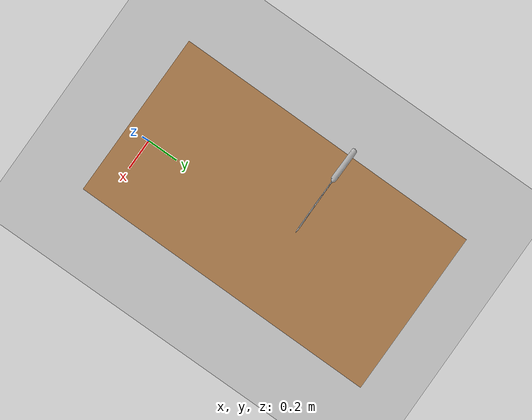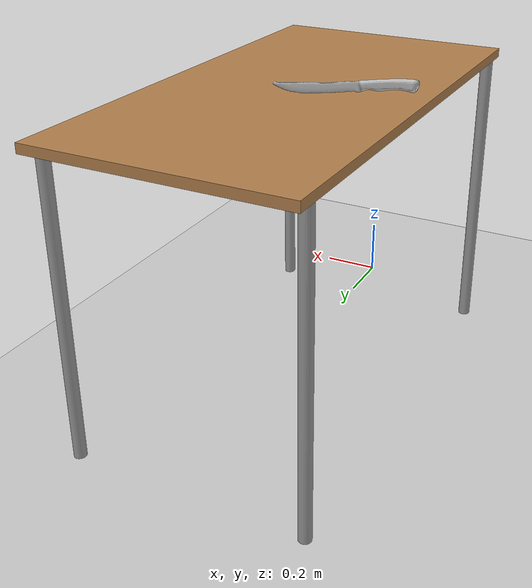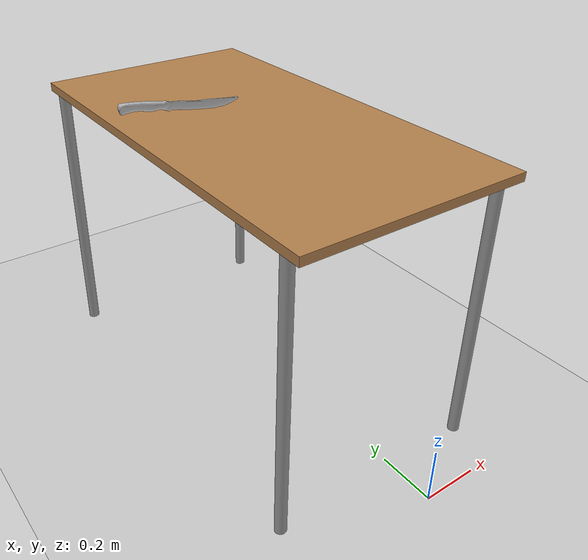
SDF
<sdf version="1.4">
 <world name="default">
  <physics type="ode">
   <max_step_size>0.001</max_step_size>
   <real_time_factor>1</real_time_factor>
   <real_time_update_rate>1000</real_time_update_rate>
   <gravity>0 0 -9.8</gravity>
  </physics>
  <include><uri>model://sun</uri></include>
  <include><uri>model://ground_plane</uri></include>
  <include><uri>model://table</uri><pose>-0.071633 0.854817 0 0 0 -1.57694</pose></include>
  <include>
   <uri>model://knife</uri>
   <pose>-0.305 0.974 1.082 -1.57746 0.148233 -0.000983</pose>
   <plugin name="swing" filename="libSwingPlugin.so"/>
  </include>
  <plugin name="butter" filename="libButterFactoryPlugin.so">
   <pose>-0.128 1.059 1.036 0 0 0</pose>
   <size>3 2 3 0.005</size>
  </plugin>
 </world>
</sdf>

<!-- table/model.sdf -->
<sdf version="1.5">
  <model name="table">
    <static>true</static>
    <link name="link">
      <collision name="surface">
        <pose>0 0 1.0 0 0 0</pose>
        <geometry>
          <box>
            <size>1.5 0.8 0.03</size>
          </box>
        </geometry>
        <surface>
          <friction>
            <ode>
              <mu>0.6</mu>
              <mu2>0.6</mu2>
            </ode>
          </friction>
        </surface>
      </collision>
      <visual name="visual1">
        <pose>0 0 1.0 0 0 0</pose>
        <geometry>
          <box>
            <size>1.5 0.8 0.03</size>
          </box>
        </geometry>
        <material>
          <script>
            <uri>model://media/materials/scripts/gazebo.material</uri>
            <name>Gazebo/Wood</name>
          </script>
        </material>
      </visual>
      <collision name="front_left_leg">
        <pose>0.68 0.38 0.5 0 0 0</pose>
        <geometry>
          <cylinder>
            <radius>0.02</radius>
            <length>1.0</length>
          </cylinder>
        </geometry>
      </collision>
      <visual name="front_left_leg">
        <pose>0.68 0.38 0.5 0 0 0</pose>
        <geometry>
          <cylinder>
            <radius>0.02</radius>
            <length>1.0</length>
          </cylinder>
        </geometry>
        <material>
          <script>
            <uri>model://media/materials/scripts/gazebo.material</uri>
            <name>Gazebo/Grey</name>
          </script>
        </material>
      </visual>
      <collision name="front_right_leg">
        <pose>0.68 -0.38 0.5 0 0 0</pose>
        <geometry>
          <cylinder>
            <radius>0.02</radius>
            <length>1.0</length>
          </cylinder>
        </geometry>
      </collision>
      <visual name="front_right_leg">
        <pose>0.68 -0.38 0.5 0 0 0</pose>
        <geometry>
          <cylinder>
            <radius>0.02</radius>
            <length>1.0</length>
          </cylinder>
        </geometry>
        <material>
          <script>
            <uri>model://media/materials/scripts/gazebo.material</uri>
            <name>Gazebo/Grey</name>
          </script>
        </material>
      </visual>
      <collision name="back_right_leg">
        <pose>-0.68 -0.38 0.5 0 0 0</pose>
        <geometry>
          <cylinder>
            <radius>0.02</radius>
            <length>1.0</length>
          </cylinder>
        </geometry>
      </collision>
      <visual name="back_right_leg">
        <pose>-0.68 -0.38 0.5 0 0 0</pose>
        <geometry>
          <cylinder>
            <radius>0.02</radius>
            <length>1.0</length>
          </cylinder>
        </geometry>
        <material>
          <script>
            <uri>model://media/materials/scripts/gazebo.material</uri>
            <name>Gazebo/Grey</name>
          </script>
        </material>
      </visual>
      <collision name="back_left_leg">
        <pose>-0.68 0.38 0.5 0 0 0</pose>
        <geometry>
          <cylinder>
            <radius>0.02</radius>
            <length>1.0</length>
          </cylinder>
        </geometry>
      </collision>
      <visual name="back_left_leg">
        <pose>-0.68 0.38 0.5 0 0 0</pose>
        <geometry>
          <cylinder>
            <radius>0.02</radius>
            <length>1.0</length>
          </cylinder>
        </geometry>
        <material>
          <script>
            <uri>model://media/materials/scripts/gazebo.material</uri>
            <name>Gazebo/Grey</name>
          </script>
        </material>
      </visual>
    </link>
  </model>
</sdf>

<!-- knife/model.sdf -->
<sdf version='1.6'>
    <model name='knife'>
        <static>false</static>
        <pose>0 0 0 0 0 0</pose>
        <link name='link'>

            <sensor name="tool_contact_sensor" type="contact">
              <always_on>true</always_on>
              <update_rate>30.0</update_rate>
              <contact>
                <collision name="fix">collision</collision>
              </contact>
              <plugin name="tool_bumper" filename="libgazebo_ros_bumper.so">
                <bumperTopicName>tool_contact_sensor_state</bumperTopicName>
                <frameName>world</frameName>
              </plugin>
            </sensor>

            <collision name='collision'>
                <geometry>
                    <mesh>
                        <uri>model://knife/model.dae</uri>
                    </mesh>
                </geometry>
                <surface>
                    <friction>
                        <ode>
                            <mu>0.5</mu>
                            <mu2>0.5</mu2>
                        </ode>
                    </friction>
                </surface>
            </collision>
            <visual name='visual'>
                <geometry>
                    <mesh>
                        <uri>model://knife/model.dae</uri>
                    </mesh>
                </geometry>
            </visual>
        </link>
    </model>
</sdf>
